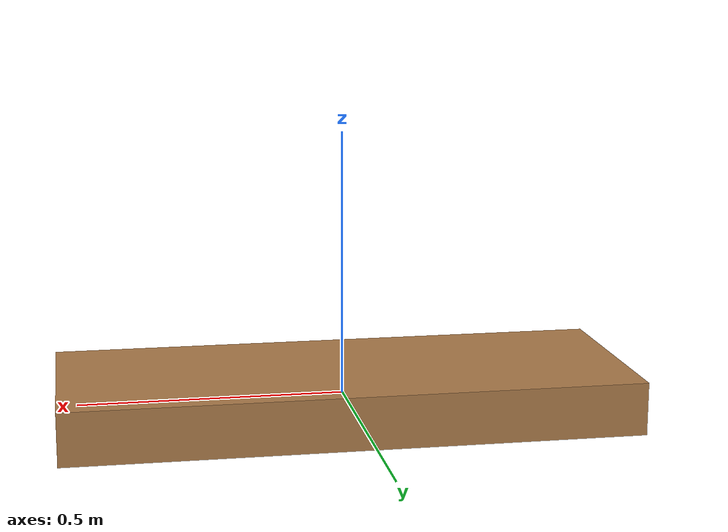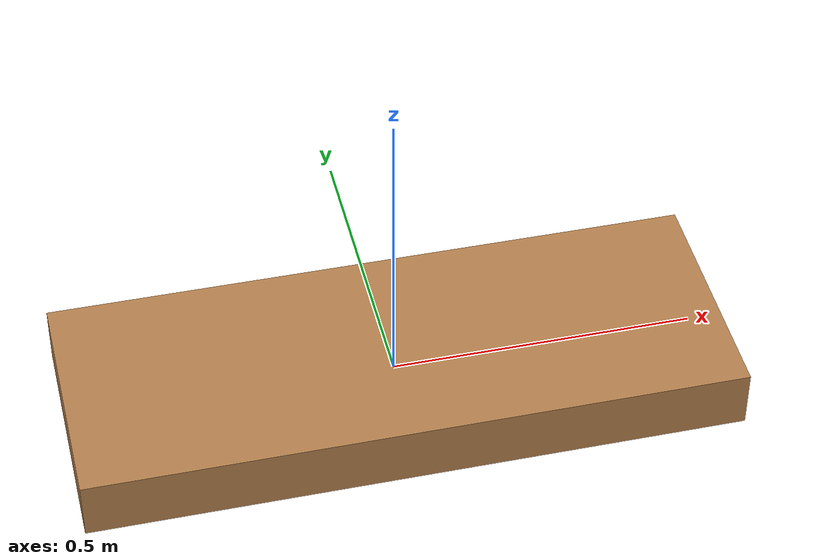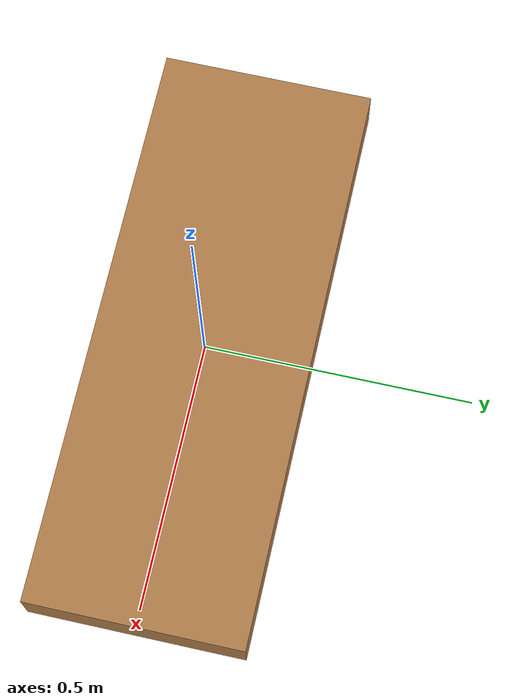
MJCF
<mujoco model="rod">
    <asset>
        <mesh file="meshes/rod.obj" name="rod_mesh" scale="0.005 0.02 0.005" />
        <texture type="2d" name="rod_texture"
            file="../textures/dark-wood.png" />
        <material name="rod_material" texture="rod_texture" texrepeat="1 1"
            texuniform="true" />

    </asset>
    <worldbody>
        <body>
            <body name="object">
                <geom pos="0 0 0" mesh="rod_mesh" type="mesh" material="rod_material"
                    density="150" group="0" condim="4" />
            </body>
        </body>
    </worldbody>
</mujoco>
